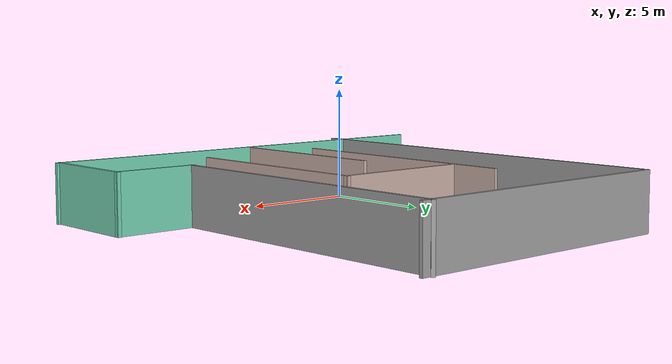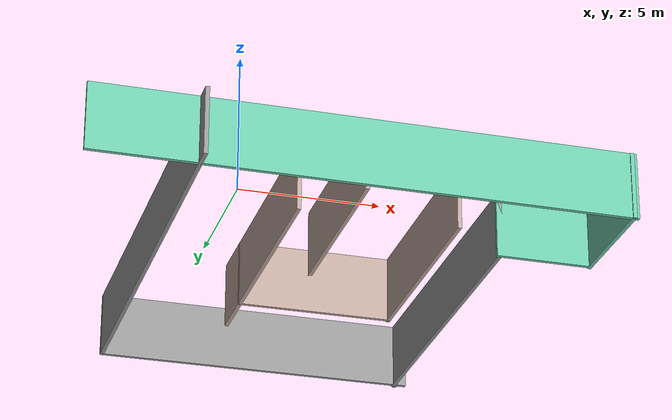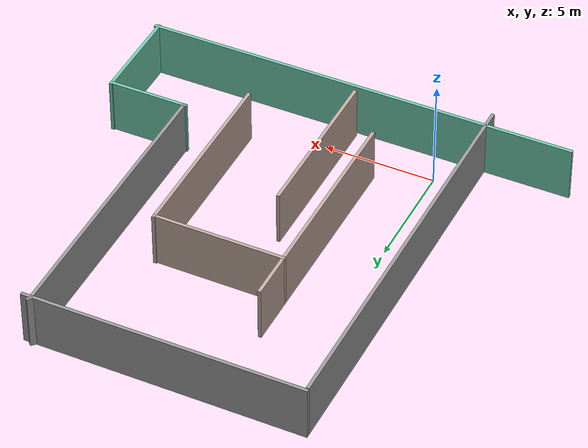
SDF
<?xml version='1.0'?>
<sdf version='1.7'>
  <model name='path'>
    <pose>4.20933 6.85795 0 0 -0 0</pose>
    <link name='Wall_0'>
      <collision name='Wall_0_Collision'>
        <geometry>
          <box>
            <size>18 0.15 2.5</size>
          </box>
        </geometry>
        <pose>0 0 1.25 0 -0 0</pose>
      </collision>
      <visual name='Wall_0_Visual'>
        <pose>0 0 1.25 0 -0 0</pose>
        <geometry>
          <box>
            <size>18 0.15 2.5</size>
          </box>
        </geometry>
        <material>
          <script>
            <uri>file://media/materials/scripts/gazebo.material</uri>
            <name>Gazebo/Grey</name>
          </script>
          <ambient>1 1 1 1</ambient>
        </material>
        <meta>
          <layer>0</layer>
        </meta>
      </visual>
      <pose>-5.83432 -0.185434 0 0 -0 -1.5708</pose>
    </link>
    <link name='Wall_27'>
      <collision name='Wall_27_Collision'>
        <geometry>
          <box>
            <size>12.5 0.15 2.5</size>
          </box>
        </geometry>
        <pose>0 0 1.25 0 -0 0</pose>
      </collision>
      <visual name='Wall_27_Visual'>
        <pose>0 0 1.25 0 -0 0</pose>
        <geometry>
          <box>
            <size>12.5 0.15 2.5</size>
          </box>
        </geometry>
        <material>
          <script>
            <uri>file://media/materials/scripts/gazebo.material</uri>
            <name>Gazebo/Grey</name>
          </script>
          <ambient>1 1 1 1</ambient>
        </material>
        <meta>
          <layer>0</layer>
        </meta>
      </visual>
      <pose>0.340678 8.92207 0 0 -0 0</pose>
    </link>
    <link name='Wall_29'>
      <collision name='Wall_29_Collision'>
        <geometry>
          <box>
            <size>19.5 0.15 2.5</size>
          </box>
        </geometry>
        <pose>0 0 1.25 0 -0 0</pose>
      </collision>
      <visual name='Wall_29_Visual'>
        <pose>0 0 1.25 0 -0 0</pose>
        <geometry>
          <box>
            <size>19.5 0.15 2.5</size>
          </box>
        </geometry>
        <material>
          <script>
            <uri>file://media/materials/scripts/gazebo.material</uri>
            <name>Gazebo/Grey</name>
          </script>
          <ambient>0.435294 0.796078 0.67451 1</ambient>
        </material>
        <meta>
          <layer>0</layer>
        </meta>
      </visual>
      <pose>0 -8.38282 0 0 -0 0</pose>
    </link>
    <link name='Wall_31'>
      <collision name='Wall_31_Collision'>
        <geometry>
          <box>
            <size>10.75 0.15 2.5</size>
          </box>
        </geometry>
        <pose>0 0 1.25 0 -0 0</pose>
      </collision>
      <visual name='Wall_31_Visual'>
        <pose>0 0 1.25 0 -0 0</pose>
        <geometry>
          <box>
            <size>10.75 0.15 2.5</size>
          </box>
        </geometry>
        <material>
          <script>
            <uri>file://media/materials/scripts/gazebo.material</uri>
            <name>Gazebo/Grey</name>
          </script>
          <ambient>0.760784 0.662745 0.627451 1</ambient>
        </material>
        <meta>
          <layer>0</layer>
        </meta>
      </visual>
      <pose>-1.80187 -0.568996 0 0 -0 -1.5708</pose>
    </link>
    <link name='Wall_33'>
      <collision name='Wall_33_Collision'>
        <geometry>
          <box>
            <size>7.5 0.15 2.5</size>
          </box>
        </geometry>
        <pose>0 0 1.25 0 -0 0</pose>
      </collision>
      <visual name='Wall_33_Visual'>
        <pose>0 0 1.25 0 -0 0</pose>
        <geometry>
          <box>
            <size>7.5 0.15 2.5</size>
          </box>
        </geometry>
        <material>
          <script>
            <uri>file://media/materials/scripts/gazebo.material</uri>
            <name>Gazebo/Grey</name>
          </script>
          <ambient>0.760784 0.662745 0.627451 1</ambient>
        </material>
        <meta>
          <layer>0</layer>
        </meta>
      </visual>
      <pose>0.022929 -4.3625 0 0 -0 1.5708</pose>
    </link>
    <link name='Wall_36'>
      <collision name='Wall_36_Collision'>
        <geometry>
          <box>
            <size>5.94679 0.15 2.5</size>
          </box>
        </geometry>
        <pose>0 0 1.25 0 -0 0</pose>
      </collision>
      <visual name='Wall_36_Visual'>
        <pose>0 0 1.25 0 -0 0</pose>
        <geometry>
          <box>
            <size>5.94679 0.15 2.5</size>
          </box>
        </geometry>
        <material>
          <script>
            <uri>file://media/materials/scripts/gazebo.material</uri>
            <name>Gazebo/Grey</name>
          </script>
          <ambient>0.760784 0.662745 0.627451 1</ambient>
        </material>
        <meta>
          <layer>0</layer>
        </meta>
      </visual>
      <pose>1.09609 2.61667 0 0 -0 -0.00332</pose>
    </link>
    <link name='Wall_37'>
      <collision name='Wall_37_Collision'>
        <geometry>
          <box>
            <size>8.75 0.15 2.5</size>
          </box>
        </geometry>
        <pose>0 0 1.25 0 -0 0</pose>
      </collision>
      <visual name='Wall_37_Visual'>
        <pose>0 0 1.25 0 -0 0</pose>
        <geometry>
          <box>
            <size>8.75 0.15 2.5</size>
          </box>
        </geometry>
        <material>
          <script>
            <uri>file://media/materials/scripts/gazebo.material</uri>
            <name>Gazebo/Grey</name>
          </script>
          <ambient>0.760784 0.662745 0.627451 1</ambient>
        </material>
        <meta>
          <layer>0</layer>
        </meta>
      </visual>
      <pose>3.99405 -1.63329 0 0 -0 -1.5708</pose>
    </link>
    <link name='Wall_40'>
      <collision name='Wall_40_Collision'>
        <geometry>
          <box>
            <size>4.5 0.15 2.5</size>
          </box>
        </geometry>
        <pose>0 0 1.25 0 -0 0</pose>
      </collision>
      <visual name='Wall_40_Visual'>
        <pose>0 0 1.25 0 -0 0</pose>
        <geometry>
          <box>
            <size>4.5 0.15 2.5</size>
          </box>
        </geometry>
        <material>
          <script>
            <uri>file://media/materials/scripts/gazebo.material</uri>
            <name>Gazebo/Grey</name>
          </script>
          <ambient>0.435294 0.796078 0.67451 1</ambient>
        </material>
        <meta>
          <layer>0</layer>
        </meta>
      </visual>
      <pose>9.57086 -6.24204 0 0 -0 1.5708</pose>
    </link>
    <link name='Wall_42'>
      <collision name='Wall_42_Collision'>
        <geometry>
          <box>
            <size>3.64254 0.15 2.5</size>
          </box>
        </geometry>
        <pose>0 0 1.25 0 -0 0</pose>
      </collision>
      <visual name='Wall_42_Visual'>
        <pose>0 0 1.25 0 -0 0</pose>
        <geometry>
          <box>
            <size>3.64254 0.15 2.5</size>
          </box>
        </geometry>
        <material>
          <script>
            <uri>file://media/materials/scripts/gazebo.material</uri>
            <name>Gazebo/Grey</name>
          </script>
          <ambient>0.435294 0.796078 0.67451 1</ambient>
        </material>
        <meta>
          <layer>0</layer>
        </meta>
      </visual>
      <pose>7.82484 -4.1267 0 0 -0 3.14159</pose>
    </link>
    <link name='Wall_43'>
      <collision name='Wall_43_Collision'>
        <geometry>
          <box>
            <size>13.25 0.15 2.5</size>
          </box>
        </geometry>
        <pose>0 0 1.25 0 -0 0</pose>
      </collision>
      <visual name='Wall_43_Visual'>
        <pose>0 0 1.25 0 -0 0</pose>
        <geometry>
          <box>
            <size>13.25 0.15 2.5</size>
          </box>
        </geometry>
        <material>
          <script>
            <uri>file://media/materials/scripts/gazebo.material</uri>
            <name>Gazebo/Grey</name>
          </script>
          <ambient>1 1 1 1</ambient>
        </material>
        <meta>
          <layer>0</layer>
        </meta>
      </visual>
      <pose>6.13849 2.4233 0 0 -0 1.5708</pose>
    </link>
    <link name='Wall_44'>
      <collision name='Wall_44_Collision'>
        <geometry>
          <box>
            <size>0.3 0.15 2.5</size>
          </box>
        </geometry>
        <pose>0 0 1.25 0 -0 0</pose>
      </collision>
      <visual name='Wall_44_Visual'>
        <pose>0 0 1.25 0 -0 0</pose>
        <geometry>
          <box>
            <size>0.3 0.15 2.5</size>
          </box>
        </geometry>
        <material>
          <script>
            <uri>file://media/materials/scripts/gazebo.material</uri>
            <name>Gazebo/Grey</name>
          </script>
          <ambient>1 1 1 1</ambient>
        </material>
        <meta>
          <layer>0</layer>
        </meta>
      </visual>
      <pose>6.13186 9.02634 0 0 -0 0.785398</pose>
    </link>
    <static>1</static>
  </model>
</sdf>
